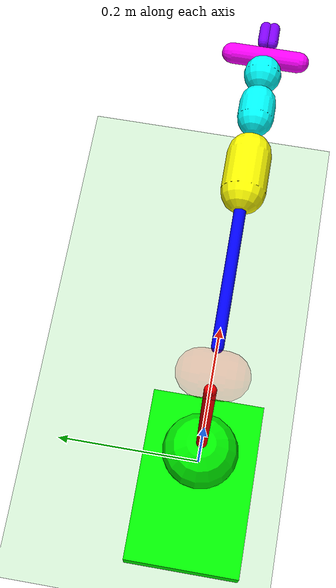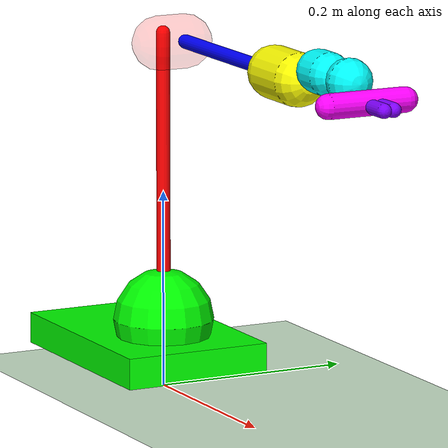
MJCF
<mujoco model="wx250s">
  <compiler angle="radian" texturedir="simplifiedassets" autolimits="true"/>
  <option timestep="0.005" iterations="20" integrator="Euler" />

  <custom>
    <numeric data="10000" name="constraint_limit_stiffness"/>
    <numeric data="20000" name="constraint_stiffness"/>
    <numeric data="1 1 1 1 1 1 1 1 1 1" name="constraint_ang_damping"/>
    <numeric data="0.1" name="constraint_vel_damping"/>
    <numeric data="-0.1" name="vel_damping"/>
    <numeric data="-0.1" name="ang_damping"/>
    <numeric data="1.0" name="baumgarte_erp"/>
    <numeric data="0.3" name="spring_mass_scale"/>
    <numeric data="1.0" name="spring_inertia_scale"/>
    <numeric data="50" name="solver_maxls"/>
  </custom>

  <asset>
    <texture builtin="checker" height="100" name="texplane" rgb1="0 0 0" rgb2="0.8 0.8 0.8" type="2d" width="100"/>
    <material name="MatPlane" reflectance="0.5" shininess="1" specular="1" texrepeat="60 60" texture="texplane"/>
  </asset>

  <default>
    <default class="wx250s">
      <joint axis="0 1 0"  armature="0.1"/>
      <position kp="50" forcerange="-35 35"/> <!-- dampratio="0.95" -->
      <default class="collision">
        <geom group="3" type="mesh"/>
        <default class="sphere_collision">
          <geom type="sphere" size="0.0006" rgba="1 0 0 1"/>
        </default>
      </default>
      <default class="nocollision">
        <geom group="3" type="mesh" contype="0" conaffinity="0"/>
        <default class="sphere_nocollision">
          <geom type="sphere" size="0.0006" rgba="1 0 0 1"/>
        </default>
      </default>
      <default class="boxcollision">
        <geom group="3" rgba="1 0 0 1" type="box"/>
      </default>
    </default>
  </default>

  <worldbody>
    <light cutoff="100" diffuse="1 1 1" dir="-0 0 -1.3" directional="true" exponent="1" pos="0 0 1.3" specular=".1 .1 .1"/>
    <geom contype="1" conaffinity="1" condim="3" material="MatPlane" name="floor" pos="0 0 0" rgba="0.8 0.9 0.8 1" size="40 40 40" type="plane" />
    <body name="wx250s/base_link" childclass="wx250s">
      <camera name="tracking" mode="fixed" pos="0 -2 2" xyaxes="1 0 0 0 1 1"/>
      <joint type="slide" stiffness="1000" damping="1000" frictionloss="0" armature="1000"  range="-0.000001 0.000001" name="baseinertia"/>
      <inertial pos="-0.0380446 0.000613892 0.0193354" quat="0.509292 0.490887 -0.496359 0.503269" mass="2000.0"
        diaginertia="0.00252518 0.00211519 0.000690737"/>
      <!-- insanely high mass to fix robot in place -->
      <geom quat="1 0 0 1" type="box" size="0.076536 0.116768 0.0158" rgba="0 1 0 1" pos="-0.038268 0 0.0358" contype="1" conaffinity="1"/>
      <body name="wx250s/shoulder_link" pos="0 0 0.072">
        <inertial pos="2.23482e-05 4.14609e-05 0.0066287" quat="0.0130352 0.706387 0.012996 0.707586" mass="0.480879"
          diaginertia="0.000588946 0.000555655 0.000378999"/>
        <joint name="waist" axis="0 0 1" range="-3.14158 3.14158"/>
        <geom quat="1 0 0 1" type="capsule" size="0.051090337336063385 0.0000146249999180436134" rgba="0 1 0 1" pos="0 0 -0.003" contype="1" conaffinity="1"/>
        <body name="wx250s/upper_arm_link" pos="0 0 0.03865">
          <inertial pos="0.0171605 2.725e-07 0.191323" quat="0.705539 0.0470667 -0.0470667 0.705539" mass="0.430811"
            diaginertia="0.00364425 0.003463 0.000399348"/>
          <joint name="shoulder" range="-1.88496 1.98968"/>
          <geom quat="1 0 0 1" type="capsule" size=" 0.00704100003093481064 0.14145001769065857" rgba="1 0 0 1" pos="0 0 0.11" contype="1" conaffinity="1"/>
          <geom quat="0 0 1 1" type="capsule" size=" 0.0274100003093481064 0.014145001769065857" rgba="1 0 0 0.2" pos="0.02 0 0.245" contype="1" conaffinity="1"/>
          <body name="wx250s/upper_forearm_link" pos="0.04975 0 0.25">
            <inertial pos="0.107963 0.000115876 0" quat="0.000980829 0.707106 -0.000980829 0.707106" mass="0.234589"
              diaginertia="0.000888 0.000887807 3.97035e-05"/>
            <joint name="elbow" range="-2.14675 1.6057"/>
              <geom quat="0 1 0 1" type="capsule" size="0.00704100003093481064 0.09" rgba="0 0 1 1" pos="0.09 0 0.0" contype="1" conaffinity="1"/>
            <body name="wx250s/lower_forearm_link" pos="0.175 0 0">
              <inertial pos="0.0374395 0.00522252 0" quat="-0.0732511 0.703302 0.0732511 0.703302" mass="0.220991"
                diaginertia="0.0001834 0.000172527 5.88633e-05"/>
              <joint name="forearm_roll" axis="1 0 0" range="-3.14158 3.14158"/>
              <geom quat="0 1 0 1" type="capsule" size="0.0262499983906746 0.02449861913919449" rgba="1 1 0 1" pos="0.04 0 0" contype="1" conaffinity="1"/>
              <body name="wx250s/wrist_link" pos="0.075 0 0">
                <inertial pos="0.04236 -1.0663e-05 0.010577" quat="0.608721 0.363497 -0.359175 0.606895" mass="0.084957"
                  diaginertia="3.29057e-05 3.082e-05 2.68343e-05"/>
                <joint name="wrist_angle" axis="0 1 0" range="-1.74533 2.14675"/>
                <geom quat="0 1 0 1" type="capsule" size="0.0212499983906746 0.01049861913919449" rgba="0 1 1 1" pos="0.04 0 0.015" contype="1" conaffinity="1"/>
                <body name="wx250s/gripper_link" pos="0.065 0 0">
                  <inertial pos="0.0325296 4.2061e-07 0.0090959" quat="0.546081 0.419626 0.62801 0.362371"
                    mass="0.110084" diaginertia="0.00307592 0.00307326 0.0030332"/>
                  <joint name="wrist_rotate" axis="1 0 0" range="-3.14158 3.14158"/>
                  <geom quat="0 1 0 1" type="capsule" size="0.02212499983906746 0.0005049861913919449" rgba="0 1 1 1" pos="0.025 0 0.015" contype="1" conaffinity="1"/>
                  <geom quat="0 0 1 1" type="capsule" size="0.0122499983906746 0.04049861913919449" rgba="1 0 1 1" pos="0.059 0 0" contype="1" conaffinity="1"/>
                  <body name="wx250s/left_finger_link" pos="0.066 0 0">
                    <inertial pos="0.013816 0 0" quat="0.705384 0.705384 -0.0493271 -0.0493271" mass="0.016246"
                      diaginertia="4.79509e-06 3.7467e-06 1.48651e-06"/>
                    <joint name="left_finger" axis="0 1 0" type="slide" range="0.015 0.037"/>
                    <geom quat="0 1 0 1" type="capsule" size="0.0071522499983906746 0.01049861913919449" rgba="0.5 0 1 1" pos="0.025 -0.005 0" contype="1" conaffinity="1"/>
                    <geom name="left/left_g0" pos="0.042 -0.009 0.012" class="sphere_collision" contype="1" conaffinity="1"/>
                    <geom name="left/left_g1" pos="0.042 -0.009 -0.012" class="sphere_collision" contype="1" conaffinity="1"/>
                  </body>
                  <body name="wx250s/right_finger_link" pos="0.066 0 0">
                    <inertial pos="0.013816 0 0" quat="0.705384 0.705384 0.0493271 0.0493271" mass="0.016246"
                      diaginertia="4.79509e-06 3.7467e-06 1.48651e-06"/>
                    <joint name="right_finger" axis="0 1 0" type="slide" range="-0.037 -0.015"/>
                    <geom quat="0 1 0 1" type="capsule" size="0.0071522499983906746 0.01049861913919449" rgba="0.5 0 1 1" pos="0.025 0.005 0" contype="1" conaffinity="1"/>
                    <geom name="right/right_g0" pos="0.042 0.009 0.012" class="sphere_collision" contype="1" conaffinity="1"/>
                    <geom name="right/right_g1" pos="0.042 0.009 -0.012" class="sphere_collision" contype="1" conaffinity="1"/>
                  </body>
                </body>
              </body>
            </body>
          </body>
        </body>
      </body>
    </body>
    <body name="target" pos="0 0 0.01" gravcomp="1">
        <!-- The joint `ref` attributes are removed for brax. -->
        <joint armature="0" axis="1 0 0" damping="0" limited="true" name="target_x" pos="0 0 0" range="-.66 .66" stiffness="0" type="slide"/>
        <joint armature="0" axis="0 1 0" damping="0" limited="true" name="target_y" pos="0 0 0" range="-.66 .66" stiffness="0" type="slide"/>
        <joint armature="0" axis="0 0 1" damping="0" limited="true" name="target_z" pos="0 0 0" range="-.66 .66" stiffness="0" type="slide"/>
        <geom conaffinity="0" contype="0" name="target" pos="0 0 0" size=".009" type="sphere" rgba="0 1 0 1"/>
    </body>
  </worldbody>

  <equality>
    <joint joint1="left_finger" joint2="right_finger" polycoef="0 -1 0 0 0"/>
  </equality>

  <actuator>
    <position forcerange="-35 35" kp="50" kv="2" class="wx250s" name="waist" joint="waist"   ctrlrange="-3.14158 3.14158" ctrllimited="true" gear="0.5"/>
    <position forcerange="-35 35" kp="50" kv="2" class="wx250s" name="shoulder" joint="shoulder"   ctrlrange="-1.88496 1.98968" ctrllimited="true" gear="1"/>
    <position forcerange="-35 35" kp="50" kv="2" class="wx250s" name="elbow" joint="elbow"  ctrlrange="-2.14675 1.6057" ctrllimited="true" gear="1"/>
    <position forcerange="-35 35" kp="50" kv="2" class="wx250s" name="forearm_roll" joint="forearm_roll" ctrlrange="-3.14158 3.14158" ctrllimited="true" gear="0.5"/>
    <position forcerange="-35 35" kp="50" kv="2" class="wx250s" name="wrist_angle" joint="wrist_angle" ctrlrange="-1.74533 2.14675" ctrllimited="true" gear="0.5"/>
    <position forcerange="-35 35" kp="50" kv="2" class="wx250s" name="wrist_rotate" joint="wrist_rotate"   ctrlrange="-3.14158 3.14158" ctrllimited="true" gear="1"/>
    <position forcerange="-35 35" kp="50" kv="2" class="wx250s" name="gripper" joint="left_finger" ctrlrange="0.015 0.037" ctrllimited="true" gear="1"/>
  </actuator>
</mujoco>
